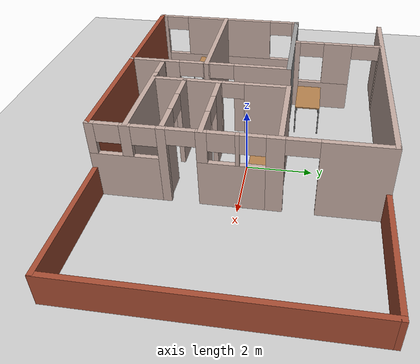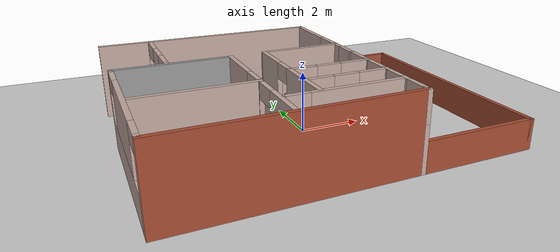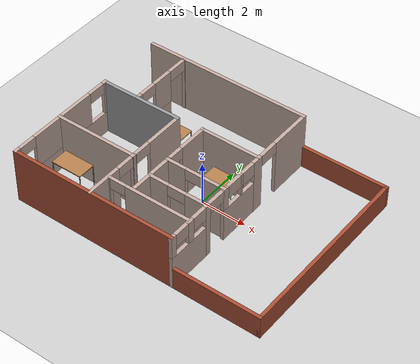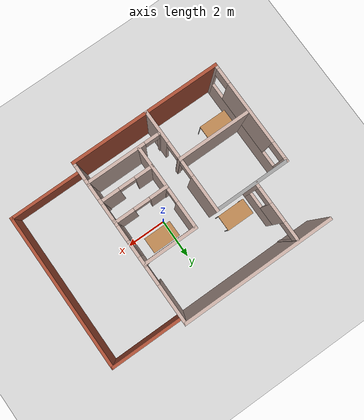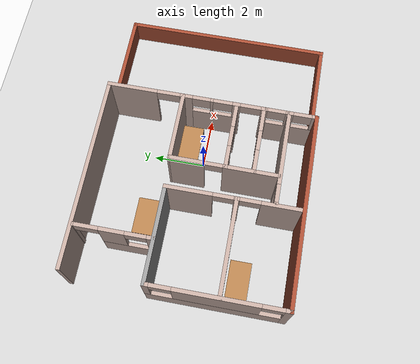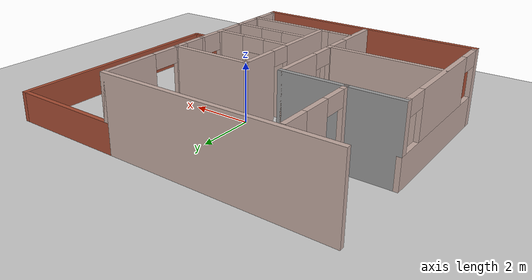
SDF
<sdf version="1.6">
 <world name="default">
  <model name="ground_plane">
   <static>1</static>
   <link name="link">
    <collision name="collision">
     <geometry><plane><normal>0 0 1</normal><size>100 100</size></plane></geometry>
     <surface><friction><ode><mu>100</mu><mu2>50</mu2></ode></friction></surface>
    </collision>
    <visual name="visual">
     <cast_shadows>0</cast_shadows>
     <geometry><plane><normal>0 0 1</normal><size>100 100</size></plane></geometry>
     <material>
      <script><uri>file://media/materials/scripts/gazebo.material</uri><name>Gazebo/Grey</name></script>
     </material>
    </visual>
   </link>
  </model>
  <light name="sun" type="directional">
   <pose>0 0 10 0 -0 0</pose>
   <diffuse>0.8 0.8 0.8 1</diffuse>
   <specular>0.1 0.1 0.1 1</specular>
   <attenuation>
    <range>1000</range>
    <constant>0.9</constant>
    <linear>0.01</linear>
    <quadratic>0.001</quadratic>
   </attenuation>
   <direction>-0.5 0.5 -1</direction>
  </light>
  <model name="Building">
   <link name="Wall_52">
    <collision name="Wall_52_Collision">
     <geometry><box><size>7.5 0.15 2.5</size></box></geometry>
     <pose>0 0 1.25 0 -0 0</pose>
    </collision>
    <visual name="Wall_52_Visual">
     <pose>0 0 1.25 0 -0 0</pose>
     <geometry><box><size>7.5 0.15 2.5</size></box></geometry>
     <material>
      <script><uri>file://media/materials/scripts/gazebo.material</uri><name>Gazebo/Grey</name></script>
      <ambient>0.760784 0.662745 0.627451 1</ambient>
     </material>
    </visual>
    <pose>-1.925 4.05 0 0 -0 0</pose>
   </link>
   <link name="Wall_53">
    <pose>1.75009 0 0 0 0 -1.5708</pose>
    <visual name="Wall_53_Visual_0">
     <pose>-3.1376 0 1.25 0 -0 0</pose>
     <geometry><box><size>1.9748 0.15 2.5</size></box></geometry>
     <material>
      <script><uri>file://media/materials/scripts/gazebo.material</uri><name>Gazebo/Grey</name></script>
      <ambient>0.760784 0.662745 0.627451 1</ambient>
     </material>
    </visual>
    <collision name="Wall_53_Collision_0">
     <geometry><box><size>1.9748 0.15 2.5</size></box></geometry>
     <pose>-3.1376 0 1.25 0 -0 0</pose>
    </collision>
    <visual name="Wall_53_Visual_1">
     <pose>-1.00489 0 1.25 0 -0 0</pose>
     <geometry><box><size>0.490612 0.15 2.5</size></box></geometry>
     <material>
      <script><uri>file://media/materials/scripts/gazebo.material</uri><name>Gazebo/Grey</name></script>
      <ambient>0.760784 0.662745 0.627451 1</ambient>
     </material>
    </visual>
    <collision name="Wall_53_Collision_1">
     <geometry><box><size>0.490612 0.15 2.5</size></box></geometry>
     <pose>-1.00489 0 1.25 0 -0 0</pose>
    </collision>
    <visual name="Wall_53_Visual_2">
     <pose>2.03288 0 1.25 0 -0 0</pose>
     <geometry><box><size>0.255222 0.15 2.5</size></box></geometry>
     <material>
      <script><uri>file://media/materials/scripts/gazebo.material</uri><name>Gazebo/Grey</name></script>
      <ambient>0.760784 0.662745 0.627451 1</ambient>
     </material>
    </visual>
    <collision name="Wall_53_Collision_2">
     <geometry><box><size>0.255222 0.15 2.5</size></box></geometry>
     <pose>2.03288 0 1.25 0 -0 0</pose>
    </collision>
    <visual name="Wall_53_Visual_3">
     <pose>0.172843 0 0.75 0 -0 0</pose>
     <geometry><box><size>1.86486 0.15 1.5</size></box></geometry>
     <material>
      <script><uri>file://media/materials/scripts/gazebo.material</uri><name>Gazebo/Grey</name></script>
      <ambient>0.760784 0.662745 0.627451 1</ambient>
     </material>
    </visual>
    <collision name="Wall_53_Collision_3">
     <geometry><box><size>1.86486 0.15 1.5</size></box></geometry>
     <pose>0.172843 0 0.75 0 -0 0</pose>
    </collision>
    <visual name="Wall_53_Visual_4">
     <pose>3.14275 0 0.75 0 -0 0</pose>
     <geometry><box><size>1.96451 0.15 1.5</size></box></geometry>
     <material>
      <script><uri>file://media/materials/scripts/gazebo.material</uri><name>Gazebo/Grey</name></script>
      <ambient>0.760784 0.662745 0.627451 1</ambient>
     </material>
    </visual>
    <collision name="Wall_53_Collision_4">
     <geometry><box><size>1.96451 0.15 1.5</size></box></geometry>
     <pose>3.14275 0 0.75 0 -0 0</pose>
    </collision>
    <visual name="Wall_53_Visual_5">
     <pose>-0.003846 0 2 0 -0 0</pose>
     <geometry><box><size>0.111481 0.15 1</size></box></geometry>
     <material>
      <script><uri>file://media/materials/scripts/gazebo.material</uri><name>Gazebo/Grey</name></script>
      <ambient>0.760784 0.662745 0.627451 1</ambient>
     </material>
    </visual>
    <collision name="Wall_53_Collision_5">
     <geometry><box><size>0.111481 0.15 1</size></box></geometry>
     <pose>-0.003846 0 2 0 -0 0</pose>
    </collision>
    <visual name="Wall_53_Visual_6">
     <pose>0.953584 0 2 0 -0 0</pose>
     <geometry><box><size>0.303377 0.15 1</size></box></geometry>
     <material>
      <script><uri>file://media/materials/scripts/gazebo.material</uri><name>Gazebo/Grey</name></script>
      <ambient>0.760784 0.662745 0.627451 1</ambient>
     </material>
    </visual>
    <collision name="Wall_53_Collision_6">
     <geometry><box><size>0.303377 0.15 1</size></box></geometry>
     <pose>0.953584 0 2 0 -0 0</pose>
    </collision>
    <visual name="Wall_53_Visual_7">
     <pose>0.953584 0 2 0 -0 0</pose>
     <geometry><box><size>0.303377 0.15 1</size></box></geometry>
     <material>
      <script><uri>file://media/materials/scripts/gazebo.material</uri><name>Gazebo/Grey</name></script>
      <ambient>0.760784 0.662745 0.627451 1</ambient>
     </material>
    </visual>
    <collision name="Wall_53_Collision_7">
     <geometry><box><size>0.303377 0.15 1</size></box></geometry>
     <pose>0.953584 0 2 0 -0 0</pose>
    </collision>
    <visual name="Wall_53_Visual_8">
     <pose>3.01238 0 2 0 -0 0</pose>
     <geometry><box><size>0.303778 0.15 1</size></box></geometry>
     <material>
      <script><uri>file://media/materials/scripts/gazebo.material</uri><name>Gazebo/Grey</name></script>
      <ambient>0.760784 0.662745 0.627451 1</ambient>
     </material>
    </visual>
    <collision name="Wall_53_Collision_8">
     <geometry><box><size>0.303778 0.15 1</size></box></geometry>
     <pose>3.01238 0 2 0 -0 0</pose>
    </collision>
    <visual name="Wall_53_Visual_9">
     <pose>3.99464 0 2 0 -0 0</pose>
     <geometry><box><size>0.260729 0.15 1</size></box></geometry>
     <material>
      <script><uri>file://media/materials/scripts/gazebo.material</uri><name>Gazebo/Grey</name></script>
      <ambient>0.760784 0.662745 0.627451 1</ambient>
     </material>
    </visual>
    <collision name="Wall_53_Collision_9">
     <geometry><box><size>0.260729 0.15 1</size></box></geometry>
     <pose>3.99464 0 2 0 -0 0</pose>
    </collision>
    <visual name="Wall_53_Visual_10">
     <pose>-0.409586 0 2.2 0 -0 0</pose>
     <geometry><box><size>0.7 0.15 0.6</size></box></geometry>
     <material>
      <script><uri>file://media/materials/scripts/gazebo.material</uri><name>Gazebo/Grey</name></script>
      <ambient>0.760784 0.662745 0.627451 1</ambient>
     </material>
    </visual>
    <collision name="Wall_53_Collision_10">
     <geometry><box><size>0.7 0.15 0.6</size></box></geometry>
     <pose>-0.409586 0 2.2 0 -0 0</pose>
    </collision>
    <visual name="Wall_53_Visual_11">
     <pose>2.51049 0 2.2 0 -0 0</pose>
     <geometry><box><size>0.7 0.15 0.6</size></box></geometry>
     <material>
      <script><uri>file://media/materials/scripts/gazebo.material</uri><name>Gazebo/Grey</name></script>
      <ambient>0.760784 0.662745 0.627451 1</ambient>
     </material>
    </visual>
    <collision name="Wall_53_Collision_11">
     <geometry><box><size>0.7 0.15 0.6</size></box></geometry>
     <pose>2.51049 0 2.2 0 -0 0</pose>
    </collision>
    <visual name="Wall_53_Visual_12">
     <pose>0.426895 0 2.2 0 -0 0</pose>
     <geometry><box><size>0.75 0.15 0.6</size></box></geometry>
     <material>
      <script><uri>file://media/materials/scripts/gazebo.material</uri><name>Gazebo/Grey</name></script>
      <ambient>0.760784 0.662745 0.627451 1</ambient>
     </material>
    </visual>
    <collision name="Wall_53_Collision_12">
     <geometry><box><size>0.75 0.15 0.6</size></box></geometry>
     <pose>0.426895 0 2.2 0 -0 0</pose>
    </collision>
    <visual name="Wall_53_Visual_13">
     <pose>3.51427 0 2.2 0 -0 0</pose>
     <geometry><box><size>0.7 0.15 0.6</size></box></geometry>
     <material>
      <script><uri>file://media/materials/scripts/gazebo.material</uri><name>Gazebo/Grey</name></script>
      <ambient>0.760784 0.662745 0.627451 1</ambient>
     </material>
    </visual>
    <collision name="Wall_53_Collision_13">
     <geometry><box><size>0.7 0.15 0.6</size></box></geometry>
     <pose>3.51427 0 2.2 0 -0 0</pose>
    </collision>
    <visual name="Wall_53_Visual_14">
     <pose>-1.7002 0 2.25 0 -0 0</pose>
     <geometry><box><size>0.9 0.15 0.5</size></box></geometry>
     <material>
      <script><uri>file://media/materials/scripts/gazebo.material</uri><name>Gazebo/Grey</name></script>
      <ambient>0.760784 0.662745 0.627451 1</ambient>
     </material>
    </visual>
    <collision name="Wall_53_Collision_14">
     <geometry><box><size>0.9 0.15 0.5</size></box></geometry>
     <pose>-1.7002 0 2.25 0 -0 0</pose>
    </collision>
    <visual name="Wall_53_Visual_15">
     <pose>1.50527 0 2.25 0 -0 0</pose>
     <geometry><box><size>0.8 0.15 0.5</size></box></geometry>
     <material>
      <script><uri>file://media/materials/scripts/gazebo.material</uri><name>Gazebo/Grey</name></script>
      <ambient>0.760784 0.662745 0.627451 1</ambient>
     </material>
    </visual>
    <collision name="Wall_53_Collision_15">
     <geometry><box><size>0.8 0.15 0.5</size></box></geometry>
     <pose>1.50527 0 2.25 0 -0 0</pose>
    </collision>
    <visual name="Wall_53_Visual_16">
     <pose>1.50527 0 2.25 0 -0 0</pose>
     <geometry><box><size>0.8 0.15 0.5</size></box></geometry>
     <material>
      <script><uri>file://media/materials/scripts/gazebo.material</uri><name>Gazebo/Grey</name></script>
      <ambient>0.760784 0.662745 0.627451 1</ambient>
     </material>
    </visual>
    <collision name="Wall_53_Collision_16">
     <geometry><box><size>0.8 0.15 0.5</size></box></geometry>
     <pose>1.50527 0 2.25 0 -0 0</pose>
    </collision>
   </link>
   <link name="Wall_54">
    <collision name="Wall_54_Collision">
     <geometry><box><size>7.5 0.15 2.5</size></box></geometry>
     <pose>0 0 1.25 0 -0 0</pose>
    </collision>
    <visual name="Wall_54_Visual">
     <pose>0 0 1.25 0 -0 0</pose>
     <geometry><box><size>7.5 0.15 2.5</size></box></geometry>
     <material>
      <script><uri>file://media/materials/scripts/gazebo.material</uri><name>Gazebo/Bricks</name></script>
      <ambient>1 1 1 1</ambient>
     </material>
    </visual>
    <pose>-1.925 -4.05 0 0 0 -3.14159</pose>
   </link>
   <link name="Wall_55">
    <pose>-5.60009 -1.5 0 0 -0 1.5708</pose>
    <visual name="Wall_55_Visual_0">
     <pose>-2.48922 0 1.25 0 -0 0</pose>
     <geometry><box><size>0.271564 0.15 2.5</size></box></geometry>
     <material>
      <script><uri>file://media/materials/scripts/gazebo.material</uri><name>Gazebo/Grey</name></script>
      <ambient>0.760784 0.662745 0.627451 1</ambient>
     </material>
    </visual>
    <collision name="Wall_55_Collision_0">
     <geometry><box><size>0.271564 0.15 2.5</size></box></geometry>
     <pose>-2.48922 0 1.25 0 -0 0</pose>
    </collision>
    <visual name="Wall_55_Visual_1">
     <pose>0.135782 0 0.5 0 -0 0</pose>
     <geometry><box><size>4.97844 0.15 1</size></box></geometry>
     <material>
      <script><uri>file://media/materials/scripts/gazebo.material</uri><name>Gazebo/Grey</name></script>
      <ambient>0.760784 0.662745 0.627451 1</ambient>
     </material>
    </visual>
    <collision name="Wall_55_Collision_1">
     <geometry><box><size>4.97844 0.15 1</size></box></geometry>
     <pose>0.135782 0 0.5 0 -0 0</pose>
    </collision>
    <visual name="Wall_55_Visual_2">
     <pose>0.016097 0 1.75 0 -0 0</pose>
     <geometry><box><size>3.13907 0.15 1.5</size></box></geometry>
     <material>
      <script><uri>file://media/materials/scripts/gazebo.material</uri><name>Gazebo/Grey</name></script>
      <ambient>0.760784 0.662745 0.627451 1</ambient>
     </material>
    </visual>
    <collision name="Wall_55_Collision_2">
     <geometry><box><size>3.13907 0.15 1.5</size></box></geometry>
     <pose>0.016097 0 1.75 0 -0 0</pose>
    </collision>
    <visual name="Wall_55_Visual_3">
     <pose>2.50531 0 1.75 0 -0 0</pose>
     <geometry><box><size>0.23937 0.15 1.5</size></box></geometry>
     <material>
      <script><uri>file://media/materials/scripts/gazebo.material</uri><name>Gazebo/Grey</name></script>
      <ambient>0.760784 0.662745 0.627451 1</ambient>
     </material>
    </visual>
    <collision name="Wall_55_Collision_3">
     <geometry><box><size>0.23937 0.15 1.5</size></box></geometry>
     <pose>2.50531 0 1.75 0 -0 0</pose>
    </collision>
    <visual name="Wall_55_Visual_4">
     <pose>-1.95344 0 2.25 0 -0 0</pose>
     <geometry><box><size>0.8 0.15 0.5</size></box></geometry>
     <material>
      <script><uri>file://media/materials/scripts/gazebo.material</uri><name>Gazebo/Grey</name></script>
      <ambient>0.760784 0.662745 0.627451 1</ambient>
     </material>
    </visual>
    <collision name="Wall_55_Collision_4">
     <geometry><box><size>0.8 0.15 0.5</size></box></geometry>
     <pose>-1.95344 0 2.25 0 -0 0</pose>
    </collision>
    <visual name="Wall_55_Visual_5">
     <pose>1.98563 0 2.25 0 -0 0</pose>
     <geometry><box><size>0.8 0.15 0.5</size></box></geometry>
     <material>
      <script><uri>file://media/materials/scripts/gazebo.material</uri><name>Gazebo/Grey</name></script>
      <ambient>0.760784 0.662745 0.627451 1</ambient>
     </material>
    </visual>
    <collision name="Wall_55_Collision_5">
     <geometry><box><size>0.8 0.15 0.5</size></box></geometry>
     <pose>1.98563 0 2.25 0 -0 0</pose>
    </collision>
   </link>
   <link name="Wall_56">
    <collision name="Wall_56_Collision">
     <geometry><box><size>3.75 0.15 2.5</size></box></geometry>
     <pose>0 0 1.25 0 -0 0</pose>
    </collision>
    <visual name="Wall_56_Visual">
     <pose>0 0 1.25 0 -0 0</pose>
     <geometry><box><size>3.75 0.15 2.5</size></box></geometry>
     <material>
      <script><uri>file://media/materials/scripts/gazebo.material</uri><name>Gazebo/Grey</name></script>
      <ambient>0.301961 0.301961 0.301961 1</ambient>
     </material>
    </visual>
    <pose>-3.80009 1.05 0 0 -0 0</pose>
   </link>
   <link name="Wall_57">
    <pose>-2.00009 -1.5 0 0 0 -1.5708</pose>
    <visual name="Wall_57_Visual_0">
     <pose>-1.712 0 1.25 0 -0 0</pose>
     <geometry><box><size>1.826 0.15 2.5</size></box></geometry>
     <material>
      <script><uri>file://media/materials/scripts/gazebo.material</uri><name>Gazebo/Grey</name></script>
      <ambient>0.760784 0.662745 0.627451 1</ambient>
     </material>
    </visual>
    <collision name="Wall_57_Collision_0">
     <geometry><box><size>1.826 0.15 2.5</size></box></geometry>
     <pose>-1.712 0 1.25 0 -0 0</pose>
    </collision>
    <visual name="Wall_57_Visual_1">
     <pose>0.088673 0 1.25 0 -0 0</pose>
     <geometry><box><size>0.215346 0.15 2.5</size></box></geometry>
     <material>
      <script><uri>file://media/materials/scripts/gazebo.material</uri><name>Gazebo/Grey</name></script>
      <ambient>0.760784 0.662745 0.627451 1</ambient>
     </material>
    </visual>
    <collision name="Wall_57_Collision_1">
     <geometry><box><size>0.215346 0.15 2.5</size></box></geometry>
     <pose>0.088673 0 1.25 0 -0 0</pose>
    </collision>
    <visual name="Wall_57_Visual_2">
     <pose>1.80067 0 1.25 0 -0 0</pose>
     <geometry><box><size>1.64865 0.15 2.5</size></box></geometry>
     <material>
      <script><uri>file://media/materials/scripts/gazebo.material</uri><name>Gazebo/Grey</name></script>
      <ambient>0.760784 0.662745 0.627451 1</ambient>
     </material>
    </visual>
    <collision name="Wall_57_Collision_2">
     <geometry><box><size>1.64865 0.15 2.5</size></box></geometry>
     <pose>1.80067 0 1.25 0 -0 0</pose>
    </collision>
    <visual name="Wall_57_Visual_3">
     <pose>-0.409001 0 2.25 0 -0 0</pose>
     <geometry><box><size>0.78 0.15 0.5</size></box></geometry>
     <material>
      <script><uri>file://media/materials/scripts/gazebo.material</uri><name>Gazebo/Grey</name></script>
      <ambient>0.760784 0.662745 0.627451 1</ambient>
     </material>
    </visual>
    <collision name="Wall_57_Collision_3">
     <geometry><box><size>0.78 0.15 0.5</size></box></geometry>
     <pose>-0.409001 0 2.25 0 -0 0</pose>
    </collision>
    <visual name="Wall_57_Visual_4">
     <pose>0.586346 0 2.25 0 -0 0</pose>
     <geometry><box><size>0.78 0.15 0.5</size></box></geometry>
     <material>
      <script><uri>file://media/materials/scripts/gazebo.material</uri><name>Gazebo/Grey</name></script>
      <ambient>0.760784 0.662745 0.627451 1</ambient>
     </material>
    </visual>
    <collision name="Wall_57_Collision_4">
     <geometry><box><size>0.78 0.15 0.5</size></box></geometry>
     <pose>0.586346 0 2.25 0 -0 0</pose>
    </collision>
   </link>
   <link name="Wall_59">
    <collision name="Wall_59_Collision">
     <geometry><box><size>2.75 0.15 2.5</size></box></geometry>
     <pose>0 0 1.25 0 -0 0</pose>
    </collision>
    <visual name="Wall_59_Visual">
     <pose>0 0 1.25 0 -0 0</pose>
     <geometry><box><size>2.75 0.15 2.5</size></box></geometry>
     <material>
      <script><uri>file://media/materials/scripts/gazebo.material</uri><name>Gazebo/Grey</name></script>
      <ambient>0.760784 0.662745 0.627451 1</ambient>
     </material>
    </visual>
    <pose>0.448326 1.12696 0 0 -0 3.14159</pose>
   </link>
   <link name="Wall_60">
    <pose>-0.855099 -0.904756 0 0 0 -1.57248</pose>
    <visual name="Wall_60_Visual_0">
     <pose>-1.40981 0 1.25 0 -0 0</pose>
     <geometry><box><size>1.39382 0.15 2.5</size></box></geometry>
     <material>
      <script><uri>file://media/materials/scripts/gazebo.material</uri><name>Gazebo/Grey</name></script>
      <ambient>0.760784 0.662745 0.627451 1</ambient>
     </material>
    </visual>
    <collision name="Wall_60_Collision_0">
     <geometry><box><size>1.39382 0.15 2.5</size></box></geometry>
     <pose>-1.40981 0 1.25 0 -0 0</pose>
    </collision>
    <visual name="Wall_60_Visual_1">
     <pose>1.03691 0 1.25 0 -0 0</pose>
     <geometry><box><size>2.13961 0.15 2.5</size></box></geometry>
     <material>
      <script><uri>file://media/materials/scripts/gazebo.material</uri><name>Gazebo/Grey</name></script>
      <ambient>0.760784 0.662745 0.627451 1</ambient>
     </material>
    </visual>
    <collision name="Wall_60_Collision_1">
     <geometry><box><size>2.13961 0.15 2.5</size></box></geometry>
     <pose>1.03691 0 1.25 0 -0 0</pose>
    </collision>
    <visual name="Wall_60_Visual_2">
     <pose>-0.372897 0 2.25 0 -0 0</pose>
     <geometry><box><size>0.68 0.15 0.5</size></box></geometry>
     <material>
      <script><uri>file://media/materials/scripts/gazebo.material</uri><name>Gazebo/Grey</name></script>
      <ambient>0.760784 0.662745 0.627451 1</ambient>
     </material>
    </visual>
    <collision name="Wall_60_Collision_2">
     <geometry><box><size>0.68 0.15 0.5</size></box></geometry>
     <pose>-0.372897 0 2.25 0 -0 0</pose>
    </collision>
   </link>
   <link name="Wall_63">
    <collision name="Wall_63_Collision">
     <geometry><box><size>3.75 0.15 2.5</size></box></geometry>
     <pose>0 0 1.25 0 -0 0</pose>
    </collision>
    <visual name="Wall_63_Visual">
     <pose>0 0 1.25 0 -0 0</pose>
     <geometry><box><size>3.75 0.15 2.5</size></box></geometry>
     <material>
      <script><uri>file://media/materials/scripts/gazebo.material</uri><name>Gazebo/Grey</name></script>
      <ambient>0.760784 0.662745 0.627451 1</ambient>
     </material>
    </visual>
    <pose>-3.7973 -1.59286 0 0 -0 0</pose>
   </link>
   <link name="Wall_65">
    <pose>-3.98941 2.51831 0 0 -0 1.5708</pose>
    <visual name="Wall_65_Visual_0">
     <pose>-1.35934 0 1.25 0 -0 0</pose>
     <geometry><box><size>0.281326 0.15 2.5</size></box></geometry>
     <material>
      <script><uri>file://media/materials/scripts/gazebo.material</uri><name>Gazebo/Grey</name></script>
      <ambient>0.760784 0.662745 0.627451 1</ambient>
     </material>
    </visual>
    <collision name="Wall_65_Collision_0">
     <geometry><box><size>0.281326 0.15 2.5</size></box></geometry>
     <pose>-1.35934 0 1.25 0 -0 0</pose>
    </collision>
    <visual name="Wall_65_Visual_1">
     <pose>1.46587 0 1.25 0 -0 0</pose>
     <geometry><box><size>0.068268 0.15 2.5</size></box></geometry>
     <material>
      <script><uri>file://media/materials/scripts/gazebo.material</uri><name>Gazebo/Grey</name></script>
      <ambient>0.760784 0.662745 0.627451 1</ambient>
     </material>
    </visual>
    <collision name="Wall_65_Collision_1">
     <geometry><box><size>0.068268 0.15 2.5</size></box></geometry>
     <pose>1.46587 0 1.25 0 -0 0</pose>
    </collision>
    <visual name="Wall_65_Visual_2">
     <pose>-0.343471 0 0.5 0 -0 0</pose>
     <geometry><box><size>1.75041 0.15 1</size></box></geometry>
     <material>
      <script><uri>file://media/materials/scripts/gazebo.material</uri><name>Gazebo/Grey</name></script>
      <ambient>0.760784 0.662745 0.627451 1</ambient>
     </material>
    </visual>
    <collision name="Wall_65_Collision_2">
     <geometry><box><size>1.75041 0.15 1</size></box></geometry>
     <pose>-0.343471 0 0.5 0 -0 0</pose>
    </collision>
    <visual name="Wall_65_Visual_3">
     <pose>0.056529 0 1.75 0 -0 0</pose>
     <geometry><box><size>0.950406 0.15 1.5</size></box></geometry>
     <material>
      <script><uri>file://media/materials/scripts/gazebo.material</uri><name>Gazebo/Grey</name></script>
      <ambient>0.760784 0.662745 0.627451 1</ambient>
     </material>
    </visual>
    <collision name="Wall_65_Collision_3">
     <geometry><box><size>0.950406 0.15 1.5</size></box></geometry>
     <pose>0.056529 0 1.75 0 -0 0</pose>
    </collision>
    <visual name="Wall_65_Visual_4">
     <pose>-0.818674 0 2.25 0 -0 0</pose>
     <geometry><box><size>0.8 0.15 0.5</size></box></geometry>
     <material>
      <script><uri>file://media/materials/scripts/gazebo.material</uri><name>Gazebo/Grey</name></script>
      <ambient>0.760784 0.662745 0.627451 1</ambient>
     </material>
    </visual>
    <collision name="Wall_65_Collision_4">
     <geometry><box><size>0.8 0.15 0.5</size></box></geometry>
     <pose>-0.818674 0 2.25 0 -0 0</pose>
    </collision>
    <visual name="Wall_65_Visual_5">
     <pose>0.981732 0 2.25 0 -0 0</pose>
     <geometry><box><size>0.9 0.15 0.5</size></box></geometry>
     <material>
      <script><uri>file://media/materials/scripts/gazebo.material</uri><name>Gazebo/Grey</name></script>
      <ambient>0.760784 0.662745 0.627451 1</ambient>
     </material>
    </visual>
    <collision name="Wall_65_Collision_5">
     <geometry><box><size>0.9 0.15 0.5</size></box></geometry>
     <pose>0.981732 0 2.25 0 -0 0</pose>
    </collision>
   </link>
   <link name="Wall_67">
    <pose>0.445899 -0.970716 0 0 -0 0</pose>
    <visual name="Wall_67_Visual_0">
     <pose>-0.912256 0 1.25 0 -0 0</pose>
     <geometry><box><size>0.925488 0.15 2.5</size></box></geometry>
     <material>
      <script><uri>file://media/materials/scripts/gazebo.material</uri><name>Gazebo/Grey</name></script>
      <ambient>0.760784 0.662745 0.627451 1</ambient>
     </material>
    </visual>
    <collision name="Wall_67_Collision_0">
     <geometry><box><size>0.925488 0.15 2.5</size></box></geometry>
     <pose>-0.912256 0 1.25 0 -0 0</pose>
    </collision>
    <visual name="Wall_67_Visual_1">
     <pose>0.862744 0 1.25 0 -0 0</pose>
     <geometry><box><size>1.02451 0.15 2.5</size></box></geometry>
     <material>
      <script><uri>file://media/materials/scripts/gazebo.material</uri><name>Gazebo/Grey</name></script>
      <ambient>0.760784 0.662745 0.627451 1</ambient>
     </material>
    </visual>
    <collision name="Wall_67_Collision_1">
     <geometry><box><size>1.02451 0.15 2.5</size></box></geometry>
     <pose>0.862744 0 1.25 0 -0 0</pose>
    </collision>
    <visual name="Wall_67_Visual_2">
     <pose>-0.049512 0 2.25 0 -0 0</pose>
     <geometry><box><size>0.8 0.15 0.5</size></box></geometry>
     <material>
      <script><uri>file://media/materials/scripts/gazebo.material</uri><name>Gazebo/Grey</name></script>
      <ambient>0.760784 0.662745 0.627451 1</ambient>
     </material>
    </visual>
    <collision name="Wall_67_Collision_2">
     <geometry><box><size>0.8 0.15 0.5</size></box></geometry>
     <pose>-0.049512 0 2.25 0 -0 0</pose>
    </collision>
   </link>
   <link name="Wall_69">
    <pose>0.448033 -2.0285 0 0 -0 3.14159</pose>
    <visual name="Wall_69_Visual_0">
     <pose>-0.870691 0 1.25 0 -0 0</pose>
     <geometry><box><size>1.00862 0.15 2.5</size></box></geometry>
     <material>
      <script><uri>file://media/materials/scripts/gazebo.material</uri><name>Gazebo/Grey</name></script>
      <ambient>0.760784 0.662745 0.627451 1</ambient>
     </material>
    </visual>
    <collision name="Wall_69_Collision_0">
     <geometry><box><size>1.00862 0.15 2.5</size></box></geometry>
     <pose>-0.870691 0 1.25 0 -0 0</pose>
    </collision>
    <visual name="Wall_69_Visual_1">
     <pose>0.904309 0 1.25 0 -0 0</pose>
     <geometry><box><size>0.941383 0.15 2.5</size></box></geometry>
     <material>
      <script><uri>file://media/materials/scripts/gazebo.material</uri><name>Gazebo/Grey</name></script>
      <ambient>0.760784 0.662745 0.627451 1</ambient>
     </material>
    </visual>
    <collision name="Wall_69_Collision_1">
     <geometry><box><size>0.941383 0.15 2.5</size></box></geometry>
     <pose>0.904309 0 1.25 0 -0 0</pose>
    </collision>
    <visual name="Wall_69_Visual_2">
     <pose>0.033617 0 2.25 0 -0 0</pose>
     <geometry><box><size>0.8 0.15 0.5</size></box></geometry>
     <material>
      <script><uri>file://media/materials/scripts/gazebo.material</uri><name>Gazebo/Grey</name></script>
      <ambient>0.760784 0.662745 0.627451 1</ambient>
     </material>
    </visual>
    <collision name="Wall_69_Collision_2">
     <geometry><box><size>0.8 0.15 0.5</size></box></geometry>
     <pose>0.033617 0 2.25 0 -0 0</pose>
    </collision>
   </link>
   <link name="Wall_71">
    <pose>-0.094156 -3.0056 0 0 -0 3.14159</pose>
    <visual name="Wall_71_Visual_0">
     <pose>-0.39905 0 1.25 0 -0 0</pose>
     <geometry><box><size>2.9519 0.15 2.5</size></box></geometry>
     <material>
      <script><uri>file://media/materials/scripts/gazebo.material</uri><name>Gazebo/Grey</name></script>
      <ambient>0.760784 0.662745 0.627451 1</ambient>
     </material>
    </visual>
    <collision name="Wall_71_Collision_0">
     <geometry><box><size>2.9519 0.15 2.5</size></box></geometry>
     <pose>-0.39905 0 1.25 0 -0 0</pose>
    </collision>
    <visual name="Wall_71_Visual_1">
     <pose>1.82595 0 1.25 0 -0 0</pose>
     <geometry><box><size>0.0981 0.15 2.5</size></box></geometry>
     <material>
      <script><uri>file://media/materials/scripts/gazebo.material</uri><name>Gazebo/Grey</name></script>
      <ambient>0.760784 0.662745 0.627451 1</ambient>
     </material>
    </visual>
    <collision name="Wall_71_Collision_1">
     <geometry><box><size>0.0981 0.15 2.5</size></box></geometry>
     <pose>1.82595 0 1.25 0 -0 0</pose>
    </collision>
    <visual name="Wall_71_Visual_2">
     <pose>1.4269 0 2.25 0 -0 0</pose>
     <geometry><box><size>0.7 0.15 0.5</size></box></geometry>
     <material>
      <script><uri>file://media/materials/scripts/gazebo.material</uri><name>Gazebo/Grey</name></script>
      <ambient>0.760784 0.662745 0.627451 1</ambient>
     </material>
    </visual>
    <collision name="Wall_71_Collision_2">
     <geometry><box><size>0.7 0.15 0.5</size></box></geometry>
     <pose>1.4269 0 2.25 0 -0 0</pose>
    </collision>
   </link>
   <link name="Wall_73">
    <collision name="Wall_73_Collision">
     <geometry><box><size>4 0.15 1</size></box></geometry>
     <pose>0 0 0.5 0 -0 0</pose>
    </collision>
    <visual name="Wall_73_Visual">
     <pose>0 0 0.5 0 -0 0</pose>
     <geometry><box><size>4 0.15 1</size></box></geometry>
     <material>
      <script><uri>file://media/materials/scripts/gazebo.material</uri><name>Gazebo/Bricks</name></script>
      <ambient>1 1 1 1</ambient>
     </material>
    </visual>
    <pose>3.67509 -4.05 0 0 -0 0</pose>
   </link>
   <link name="Wall_74">
    <collision name="Wall_74_Collision">
     <geometry><box><size>8.25 0.15 1</size></box></geometry>
     <pose>0 0 0.5 0 -0 0</pose>
    </collision>
    <visual name="Wall_74_Visual">
     <pose>0 0 0.5 0 -0 0</pose>
     <geometry><box><size>8.25 0.15 1</size></box></geometry>
     <material>
      <script><uri>file://media/materials/scripts/gazebo.material</uri><name>Gazebo/Bricks</name></script>
      <ambient>1 1 1 1</ambient>
     </material>
    </visual>
    <pose>5.60009 0 0 0 -0 1.5708</pose>
   </link>
   <link name="Wall_75">
    <collision name="Wall_75_Collision">
     <geometry><box><size>4 0.15 1</size></box></geometry>
     <pose>0 0 0.5 0 -0 0</pose>
    </collision>
    <visual name="Wall_75_Visual">
     <pose>0 0 0.5 0 -0 0</pose>
     <geometry><box><size>4 0.15 1</size></box></geometry>
     <material>
      <script><uri>file://media/materials/scripts/gazebo.material</uri><name>Gazebo/Bricks</name></script>
      <ambient>1 1 1 1</ambient>
     </material>
    </visual>
    <pose>3.67509 4.05 0 0 -0 3.14159</pose>
   </link>
   <static>1</static>
  </model>
  <model name="table_1">
   <static>0</static>
   <link name="link">
    <collision name="surface">
     <pose>0 0 1 0 -0 0</pose>
     <geometry><box><size>1.5 0.8 0.03</size></box></geometry>
     <surface><friction><ode><mu>0.6</mu><mu2>0.6</mu2></ode></friction></surface>
    </collision>
    <visual name="visual1">
     <pose>0 0 1 0 -0 0</pose>
     <geometry><box><size>1.4 0.8 0.04</size></box></geometry>
     <material>
      <script><uri>file://media/materials/scripts/gazebo.material</uri><name>Gazebo/Wood</name></script>
     </material>
    </visual>
    <collision name="front_left_leg">
     <pose>0.68 0.38 0.5 0 -0 0</pose>
     <geometry><cylinder><radius>0.02</radius><length>1</length></cylinder></geometry>
    </collision>
    <visual name="front_left_leg">
     <pose>0.68 0.38 0.5 0 -0 0</pose>
     <geometry><cylinder><radius>0.02</radius><length>1</length></cylinder></geometry>
     <material>
      <script><uri>file://media/materials/scripts/gazebo.material</uri><name>Gazebo/Grey</name></script>
     </material>
    </visual>
    <collision name="front_right_leg">
     <pose>0.68 -0.38 0.5 0 -0 0</pose>
     <geometry><cylinder><radius>0.02</radius><length>1</length></cylinder></geometry>
    </collision>
    <visual name="front_right_leg">
     <pose>0.68 -0.38 0.5 0 -0 0</pose>
     <geometry><cylinder><radius>0.02</radius><length>1</length></cylinder></geometry>
     <material>
      <script><uri>file://media/materials/scripts/gazebo.material</uri><name>Gazebo/Grey</name></script>
     </material>
    </visual>
    <collision name="back_right_leg">
     <pose>-0.68 -0.38 0.5 0 -0 0</pose>
     <geometry><cylinder><radius>0.02</radius><length>1</length></cylinder></geometry>
    </collision>
    <visual name="back_right_leg">
     <pose>-0.68 -0.38 0.5 0 -0 0</pose>
     <geometry><cylinder><radius>0.02</radius><length>1</length></cylinder></geometry>
     <material>
      <script><uri>file://media/materials/scripts/gazebo.material</uri><name>Gazebo/Grey</name></script>
     </material>
    </visual>
    <collision name="back_left_leg">
     <pose>-0.68 0.38 0.5 0 -0 0</pose>
     <geometry><cylinder><radius>0.02</radius><length>1</length></cylinder></geometry>
    </collision>
    <visual name="back_left_leg">
     <pose>-0.68 0.38 0.5 0 -0 0</pose>
     <geometry><cylinder><radius>0.02</radius><length>1</length></cylinder></geometry>
     <material>
      <script><uri>file://media/materials/scripts/gazebo.material</uri><name>Gazebo/Grey</name></script>
     </material>
    </visual>
    <inertial>
     <inertia><ixx>1</ixx><ixy>0</ixy><ixz>0</ixz><iyy>1</iyy><iyz>0</iyz><izz>1</izz></inertia>
     <mass>1</mass>
    </inertial>
   </link>
   <pose>-2.83389 1.70886 -2e-06 0 -0 0</pose>
  </model>
  <model name="table_2">
   <static>0</static>
   <link name="link">
    <collision name="surface">
     <pose>0 0 1 0 -0 0</pose>
     <geometry><box><size>1.5 0.8 0.03</size></box></geometry>
     <surface><friction><ode><mu>0.6</mu><mu2>0.6</mu2></ode></friction></surface>
    </collision>
    <visual name="visual1">
     <pose>0 0 1 0 -0 0</pose>
     <geometry><box><size>1.4 0.8 0.04</size></box></geometry>
     <material>
      <script><uri>file://media/materials/scripts/gazebo.material</uri><name>Gazebo/Wood</name></script>
     </material>
    </visual>
    <collision name="front_left_leg">
     <pose>0.68 0.38 0.5 0 -0 0</pose>
     <geometry><cylinder><radius>0.02</radius><length>1</length></cylinder></geometry>
    </collision>
    <visual name="front_left_leg">
     <pose>0.68 0.38 0.5 0 -0 0</pose>
     <geometry><cylinder><radius>0.02</radius><length>1</length></cylinder></geometry>
     <material>
      <script><uri>file://media/materials/scripts/gazebo.material</uri><name>Gazebo/Grey</name></script>
     </material>
    </visual>
    <collision name="front_right_leg">
     <pose>0.68 -0.38 0.5 0 -0 0</pose>
     <geometry><cylinder><radius>0.02</radius><length>1</length></cylinder></geometry>
    </collision>
    <visual name="front_right_leg">
     <pose>0.68 -0.38 0.5 0 -0 0</pose>
     <geometry><cylinder><radius>0.02</radius><length>1</length></cylinder></geometry>
     <material>
      <script><uri>file://media/materials/scripts/gazebo.material</uri><name>Gazebo/Grey</name></script>
     </material>
    </visual>
    <collision name="back_right_leg">
     <pose>-0.68 -0.38 0.5 0 -0 0</pose>
     <geometry><cylinder><radius>0.02</radius><length>1</length></cylinder></geometry>
    </collision>
    <visual name="back_right_leg">
     <pose>-0.68 -0.38 0.5 0 -0 0</pose>
     <geometry><cylinder><radius>0.02</radius><length>1</length></cylinder></geometry>
     <material>
      <script><uri>file://media/materials/scripts/gazebo.material</uri><name>Gazebo/Grey</name></script>
     </material>
    </visual>
    <collision name="back_left_leg">
     <pose>-0.68 0.38 0.5 0 -0 0</pose>
     <geometry><cylinder><radius>0.02</radius><length>1</length></cylinder></geometry>
    </collision>
    <visual name="back_left_leg">
     <pose>-0.68 0.38 0.5 0 -0 0</pose>
     <geometry><cylinder><radius>0.02</radius><length>1</length></cylinder></geometry>
     <material>
      <script><uri>file://media/materials/scripts/gazebo.material</uri><name>Gazebo/Grey</name></script>
     </material>
    </visual>
    <inertial>
     <inertia><ixx>1</ixx><ixy>0</ixy><ixz>0</ixz><iyy>1</iyy><iyz>0</iyz><izz>1</izz></inertia>
     <mass>1</mass>
    </inertial>
   </link>
   <pose>-4.58986 -2.14855 -2e-06 0 -0 0</pose>
  </model>
  <model name="table_3">
   <static>0</static>
   <link name="link">
    <collision name="surface">
     <pose>0 0 1 0 -0 0</pose>
     <geometry><box><size>1.5 0.8 0.03</size></box></geometry>
     <surface><friction><ode><mu>0.6</mu><mu2>0.6</mu2></ode></friction></surface>
    </collision>
    <visual name="visual1">
     <pose>0 0 1 0 -0 0</pose>
     <geometry><box><size>1.4 0.8 0.04</size></box></geometry>
     <material>
      <script><uri>file://media/materials/scripts/gazebo.material</uri><name>Gazebo/Wood</name></script>
     </material>
    </visual>
    <collision name="front_left_leg">
     <pose>0.68 0.38 0.5 0 -0 0</pose>
     <geometry><cylinder><radius>0.02</radius><length>1</length></cylinder></geometry>
    </collision>
    <visual name="front_left_leg">
     <pose>0.68 0.38 0.5 0 -0 0</pose>
     <geometry><cylinder><radius>0.02</radius><length>1</length></cylinder></geometry>
     <material>
      <script><uri>file://media/materials/scripts/gazebo.material</uri><name>Gazebo/Grey</name></script>
     </material>
    </visual>
    <collision name="front_right_leg">
     <pose>0.68 -0.38 0.5 0 -0 0</pose>
     <geometry><cylinder><radius>0.02</radius><length>1</length></cylinder></geometry>
    </collision>
    <visual name="front_right_leg">
     <pose>0.68 -0.38 0.5 0 -0 0</pose>
     <geometry><cylinder><radius>0.02</radius><length>1</length></cylinder></geometry>
     <material>
      <script><uri>file://media/materials/scripts/gazebo.material</uri><name>Gazebo/Grey</name></script>
     </material>
    </visual>
    <collision name="back_right_leg">
     <pose>-0.68 -0.38 0.5 0 -0 0</pose>
     <geometry><cylinder><radius>0.02</radius><length>1</length></cylinder></geometry>
    </collision>
    <visual name="back_right_leg">
     <pose>-0.68 -0.38 0.5 0 -0 0</pose>
     <geometry><cylinder><radius>0.02</radius><length>1</length></cylinder></geometry>
     <material>
      <script><uri>file://media/materials/scripts/gazebo.material</uri><name>Gazebo/Grey</name></script>
     </material>
    </visual>
    <collision name="back_left_leg">
     <pose>-0.68 0.38 0.5 0 -0 0</pose>
     <geometry><cylinder><radius>0.02</radius><length>1</length></cylinder></geometry>
    </collision>
    <visual name="back_left_leg">
     <pose>-0.68 0.38 0.5 0 -0 0</pose>
     <geometry><cylinder><radius>0.02</radius><length>1</length></cylinder></geometry>
     <material>
      <script><uri>file://media/materials/scripts/gazebo.material</uri><name>Gazebo/Grey</name></script>
     </material>
    </visual>
    <inertial>
     <inertia><ixx>1</ixx><ixy>0</ixy><ixz>0</ixz><iyy>1</iyy><iyz>0</iyz><izz>1</izz></inertia>
     <mass>1</mass>
    </inertial>
   </link>
   <pose>0.490431 0.599885 -2e-06 0 -0 0</pose>
  </model>
  <gravity>0 0 -9.8</gravity>
  <magnetic_field>6e-06 2.3e-05 -4.2e-05</magnetic_field>
  <atmosphere type="adiabatic"/>
  <physics name="default_physics" default="0" type="ode">
   <max_step_size>0.001</max_step_size>
   <real_time_factor>1</real_time_factor>
   <real_time_update_rate>1000</real_time_update_rate>
  </physics>
  <scene><ambient>0.4 0.4 0.4 1</ambient><background>0.7 0.7 0.7 1</background><shadows>1</shadows></scene>
  <spherical_coordinates>
   <surface_model>EARTH_WGS84</surface_model>
   <latitude_deg>0</latitude_deg>
   <longitude_deg>0</longitude_deg>
   <elevation>0</elevation>
   <heading_deg>0</heading_deg>
  </spherical_coordinates>
  <plugin filename="libcollision_map_creator.so" name="collision_map_creator"/>
 </world>
</sdf>
